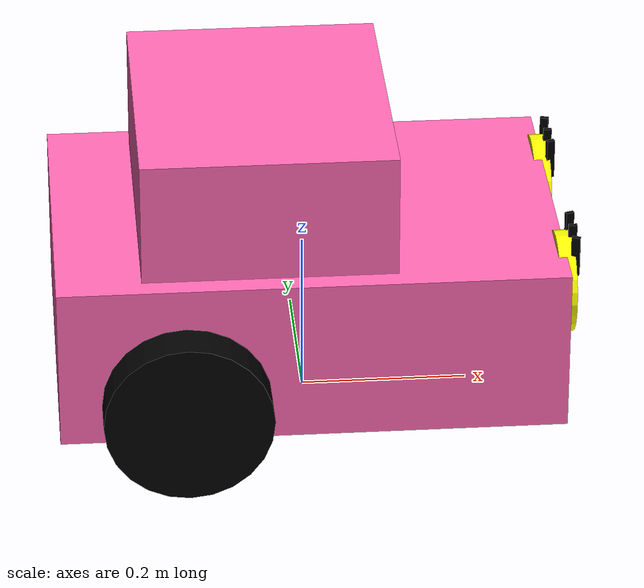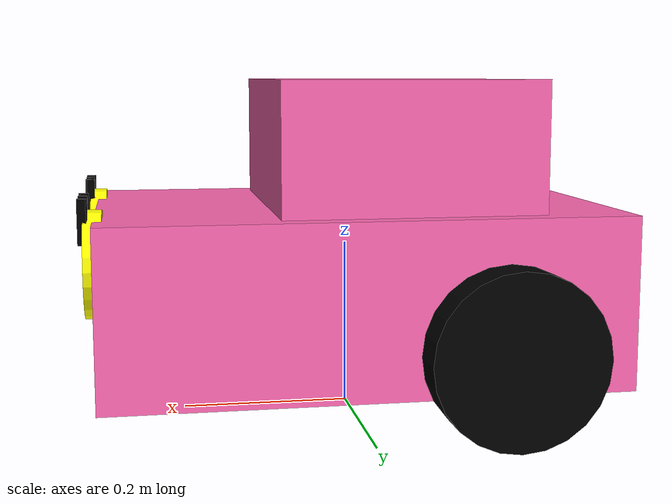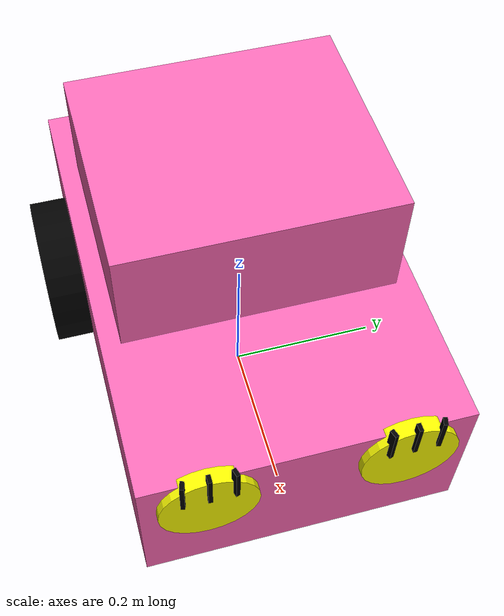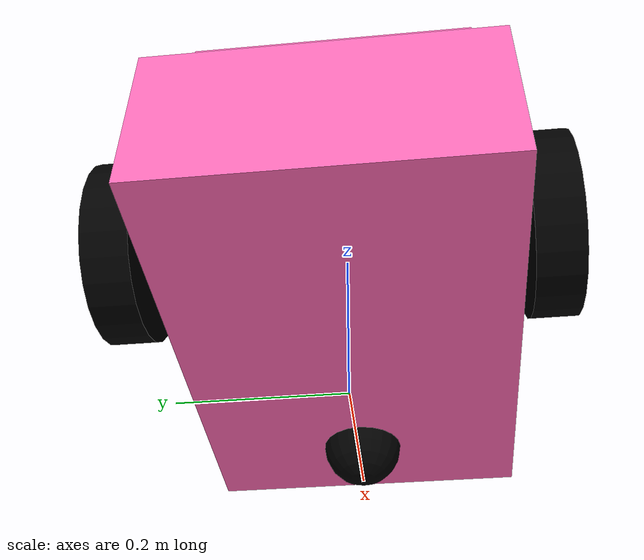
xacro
<?xml version="1.0"?>
<robot xmlns:xacro="http://www.ros.org/wiki/xacro" name="glam_bot_v2">

  <!-- PROPERTIES -->
  <!-- Body dimensions -->
  <xacro:property name="body_len" value="0.6"/>
  <xacro:property name="body_width" value="0.4"/>
  <xacro:property name="body_height" value="0.2"/>
  <xacro:property name="body_lift" value="0.15"/>

  <!-- Wheel dimensions -->
  <xacro:property name="wheel_radius" value="0.1"/>
  <xacro:property name="wheel_len" value="0.05"/>
  <xacro:property name="wheel_offset_x" value="-0.15"/>
  <xacro:property name="wheel_offset_y" value="0.225"/>
  <xacro:property name="wheel_offset_z" value="-0.05"/>

  <!-- MATERIALS -->
  <material name="hot_pink">
    <color rgba="1.0 0.41 0.7 1.0"/>
  </material>
  <material name="black">
    <color rgba="0.0 0.0 0.0 1.0"/>
  </material>
  <material name="yellow">
    <color rgba="1.0 1.0 0.0 1.0"/>
  </material>

  <!-- MACROS -->

  <!-- Macro for creating a wheel -->
  <xacro:macro name="make_wheel" params="prefix reflect">
    <link name="${prefix}_wheel">
      <visual>
        <geometry>
          <cylinder radius="${wheel_radius}" length="${wheel_len}"/>
        </geometry>
        <material name="black"/>
        <origin rpy="1.5708 0 0"/>
      </visual>
      <collision>
        <geometry>
          <cylinder radius="${wheel_radius}" length="${wheel_len}"/>
        </geometry>
        <origin rpy="1.5708 0 0"/>
      </collision>
      <inertial>
        <mass value="1.0"/>
        <inertia ixx="0.01" ixy="0.0" ixz="0.0" iyy="0.01" iyz="0.0" izz="0.01"/>
      </inertial>
    </link>

    <joint name="${prefix}_wheel_joint" type="continuous">
      <parent link="body_link"/>
      <child link="${prefix}_wheel"/>
      <!-- reflect is 1 for left and -1 for right -->
      <origin xyz="${wheel_offset_x} ${reflect * wheel_offset_y} ${wheel_offset_z}" rpy="0 0 0"/>
      <axis xyz="0 1 0"/>
    </joint>
  </xacro:macro>

  <!-- Macro for a single eyelash -->
  <xacro:macro name="make_lash" params="suffix parent y_pos angle">
    <link name="${parent}_lash_${suffix}">
      <visual>
        <geometry> <box size="0.01 0.005 0.05"/> </geometry>
        <material name="black"/>
      </visual>
      <inertial> <mass value="0.001"/> <inertia ixx="0" ixy="0" ixz="0" iyy="0" iyz="0" izz="0"/> </inertial>
    </link>
    <joint name="${parent}_lash_${suffix}_j" type="fixed">
      <parent link="${parent}"/>
      <child link="${parent}_lash_${suffix}"/>
      <origin xyz="0.01 ${y_pos} 0.05" rpy="0 0 ${angle}"/>
    </joint>
  </xacro:macro>

  <!-- Macro for an eye with lashes -->
  <xacro:macro name="make_eye" params="prefix reflect">
    <link name="${prefix}_eye">
      <visual>
        <geometry>
          <cylinder radius="0.06" length="0.02"/>
        </geometry>
        <material name="yellow"/>
        <origin rpy="0 1.5708 0"/>
      </visual>
      <inertial>
        <mass value="0.01"/>
        <inertia ixx="0.0001" ixy="0" ixz="0" iyy="0.0001" iyz="0" izz="0.0001"/>
      </inertial>
    </link>

    <joint name="${prefix}_eye_joint" type="fixed">
      <parent link="body_link"/>
      <child link="${prefix}_eye"/>
      <origin xyz="0.3 ${reflect * 0.12} 0.05" rpy="0 0 0"/>
    </joint>

    <!-- Adding lashes to the eye -->
    <xacro:make_lash suffix="1" parent="${prefix}_eye" y_pos="0" angle="0"/>
    <xacro:make_lash suffix="2" parent="${prefix}_eye" y_pos="0.03" angle="${reflect * -0.3}"/>
    <xacro:make_lash suffix="3" parent="${prefix}_eye" y_pos="-0.03" angle="${reflect * 0.3}"/>
  </xacro:macro>

  <!-- MAIN ROBOT STRUCTURE -->

  <!-- Base Footprint on Ground -->
  <link name="base_link"/>

  <!-- Body Link -->
  <link name="body_link">
    <visual>
      <geometry>
        <box size="${body_len} ${body_width} ${body_height}"/>
      </geometry>
      <material name="hot_pink"/>
    </visual>
    <collision>
      <geometry>
        <box size="${body_len} ${body_width} ${body_height}"/>
      </geometry>
    </collision>
    <inertial>
      <mass value="5.0"/>
      <inertia ixx="0.1" ixy="0.0" ixz="0.0" iyy="0.1" iyz="0.0" izz="0.1"/>
    </inertial>
  </link>

  <joint name="base_to_body" type="fixed">
    <parent link="base_link"/>
    <child link="body_link"/>
    <origin xyz="0 0 ${body_lift}" rpy="0 0 0"/>
  </joint>

  <!-- Cabin -->
  <link name="cabin_link">
    <visual>
      <geometry> <box size="0.3 0.35 0.15"/> </geometry>
      <material name="hot_pink"/>
    </visual>
    <collision> <geometry> <box size="0.3 0.35 0.15"/> </geometry> </collision>
    <inertial> <mass value="1.0"/> <inertia ixx="0.01" ixy="0.0" ixz="0.0" iyy="0.01" iyz="0.0" izz="0.01"/> </inertial>
  </link>

  <joint name="cabin_joint" type="fixed">
    <parent link="body_link"/>
    <child link="cabin_link"/>
    <origin xyz="-0.05 0 0.175" rpy="0 0 0"/>
  </joint>

  <!-- Wheels using macro -->
  <xacro:make_wheel prefix="left" reflect="1"/>
  <xacro:make_wheel prefix="right" reflect="-1"/>

  <!-- Caster Wheel -->
  <link name="caster_wheel">
    <visual>
      <geometry> <sphere radius="0.05"/> </geometry>
      <material name="black"/>
    </visual>
    <collision> <geometry> <sphere radius="0.05"/> </geometry> </collision>
    <inertial> <mass value="0.5"/> <inertia ixx="0.001" ixy="0.0" ixz="0.0" iyy="0.001" iyz="0.0" izz="0.001"/> </inertial>
  </link>

  <joint name="caster_joint" type="fixed">
    <parent link="body_link"/>
    <child link="caster_wheel"/>
    <origin xyz="0.2 0 -0.1" rpy="0 0 0"/>
  </joint>

  <!-- Eyes and Lashes using macro -->
  <xacro:make_eye prefix="left" reflect="1"/>
  <xacro:make_eye prefix="right" reflect="-1"/>

</robot>
